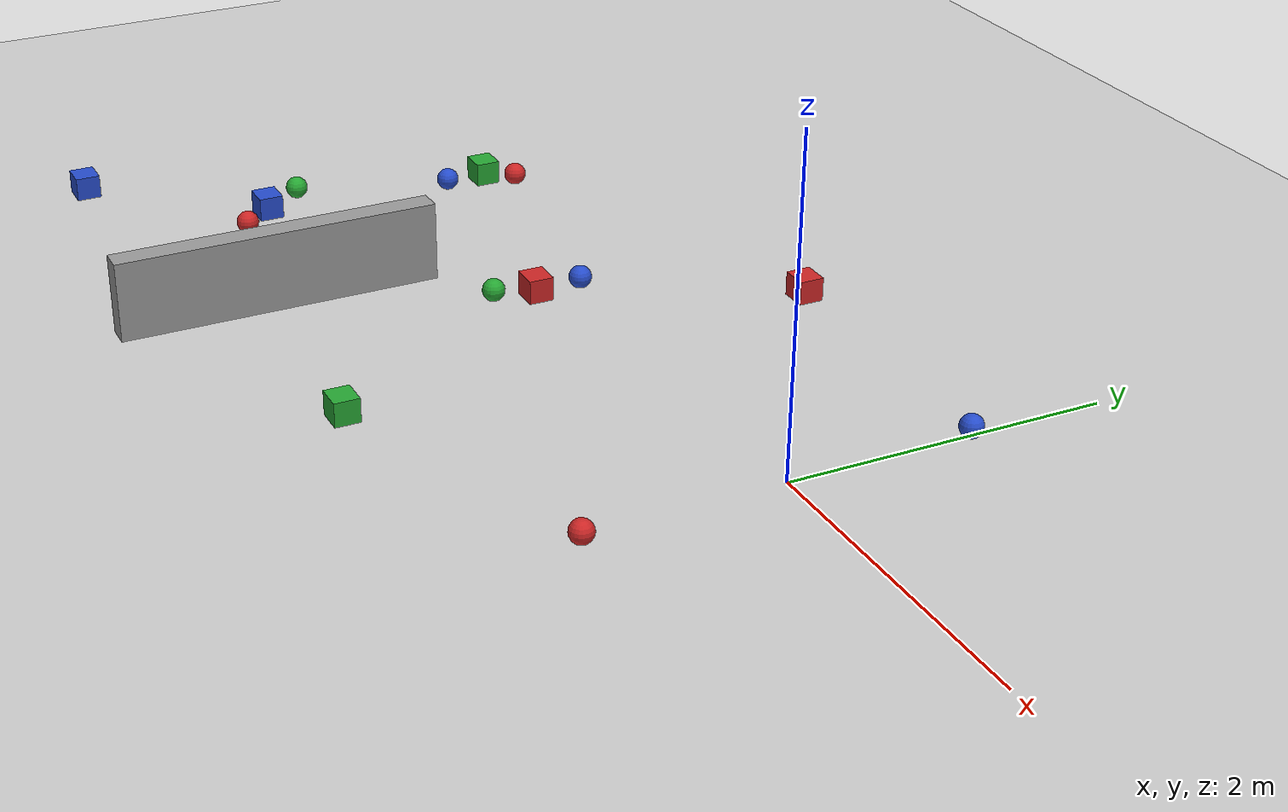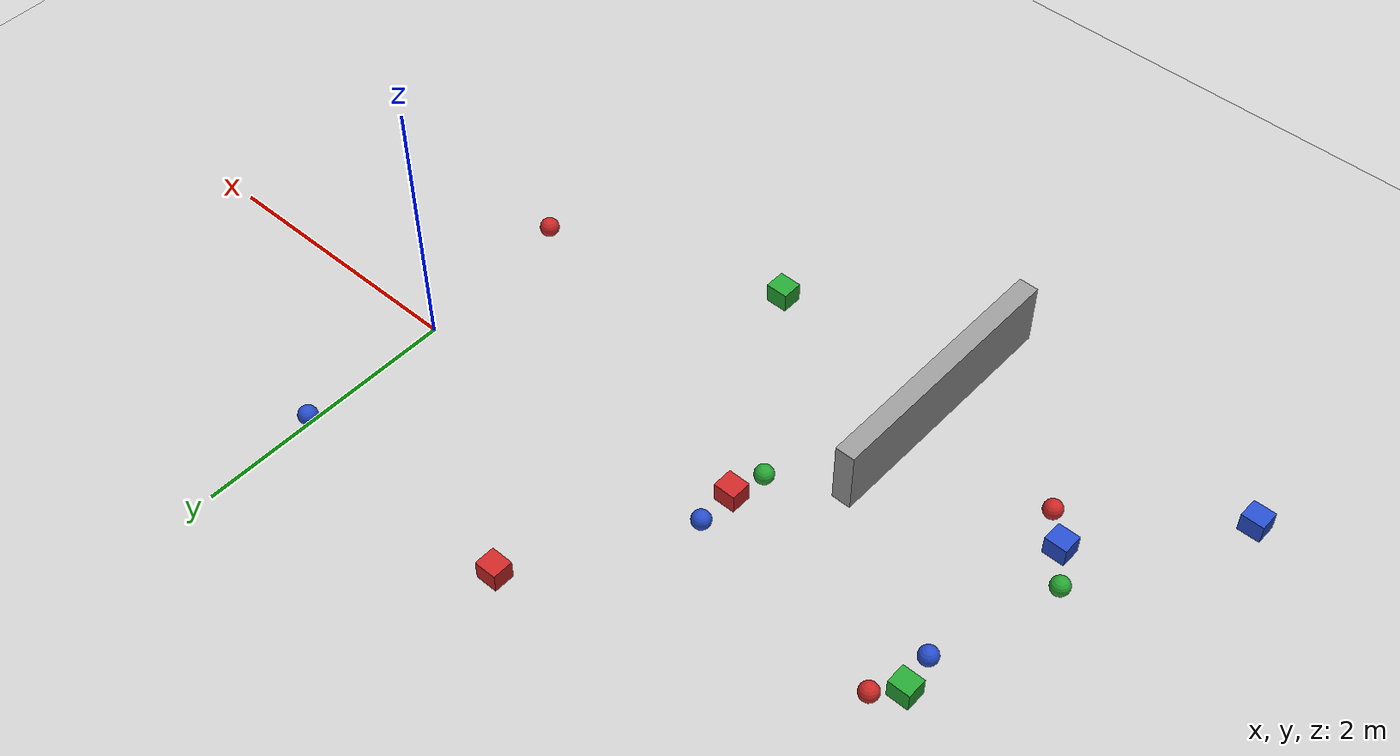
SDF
<sdf version="1.7">
 <world name="default">
  <light name="sun" type="directional">
   <cast_shadows>0</cast_shadows>
   <pose>0 0 10 0 -0 0</pose>
   <diffuse>0.8 0.8 0.8 1</diffuse>
   <specular>0.2 0.2 0.2 1</specular>
   <attenuation>
    <range>1000</range>
    <constant>0.9</constant>
    <linear>0.01</linear>
    <quadratic>0.001</quadratic>
   </attenuation>
   <direction>-0.5 0.1 -0.9</direction>
   <spot><inner_angle>0</inner_angle><outer_angle>0</outer_angle><falloff>0</falloff></spot>
  </light>
  <model name="ground_plane">
   <static>1</static>
   <link name="link">
    <collision name="collision">
     <geometry><plane><normal>0 0 1</normal><size>100 100</size></plane></geometry>
     <surface><friction><ode><mu>100</mu><mu2>50</mu2></ode></friction></surface>
    </collision>
    <visual name="visual">
     <cast_shadows>0</cast_shadows>
     <geometry><plane><normal>0 0 1</normal><size>100 100</size></plane></geometry>
     <material>
      <script><uri>file://media/materials/scripts/gazebo.material</uri><name>Gazebo/Grey</name></script>
     </material>
    </visual>
   </link>
  </model>
  <gravity>0 0 -9.8</gravity>
  <scene><ambient>0.4 0.4 0.4 1</ambient><background>0.7 0.7 0.7 1</background><shadows>1</shadows></scene>
  <magnetic_field>6e-06 2.3e-05 -4.2e-05</magnetic_field>
  <atmosphere type="adiabatic"/>
  <physics type="ode">
   <max_step_size>0.001</max_step_size>
   <real_time_factor>1</real_time_factor>
   <real_time_update_rate>1000</real_time_update_rate>
  </physics>
  <audio><device>default</device></audio>
  <spherical_coordinates>
   <surface_model>EARTH_WGS84</surface_model>
   <latitude_deg>0</latitude_deg>
   <longitude_deg>0</longitude_deg>
   <elevation>0</elevation>
   <heading_deg>0</heading_deg>
  </spherical_coordinates>
  <model name="unit_sphere_1">
   <link name="link">
    <inertial>
     <mass>1</mass>
     <inertia><ixx>0.1</ixx><ixy>0</ixy><ixz>0</ixz><iyy>0.1</iyy><iyz>0</iyz><izz>0.1</izz></inertia>
    </inertial>
    <visual name="visual">
     <geometry><sphere><radius>0.0712854</radius></sphere></geometry>
     <material>
      <script><name>Gazebo/Green</name><uri>file://media/materials/scripts/gazebo.material</uri></script>
      <shader type="pixel"><normal_map>__default__</normal_map></shader>
      <ambient>0 1 0 1</ambient>
      <diffuse>0 1 0 1</diffuse>
      <specular>0.1 0.1 0.1 1</specular>
      <emissive>0 0 0 1</emissive>
     </material>
    </visual>
    <collision name="collision">
     <geometry><sphere><radius>0.071285</radius></sphere></geometry>
     <surface>
      <friction>
       <ode><mu>1</mu><mu2>1</mu2><fdir1>0 0 0</fdir1><slip1>0</slip1><slip2>0</slip2></ode>
       <torsional>
        <coefficient>1</coefficient>
        <patch_radius>0</patch_radius>
        <surface_radius>0</surface_radius>
        <use_patch_radius>1</use_patch_radius>
        <ode><slip>0</slip></ode>
       </torsional>
      </friction>
      <bounce><restitution_coefficient>0</restitution_coefficient><threshold>1e+06</threshold></bounce>
      <contact>
       <collide_without_contact>0</collide_without_contact>
       <collide_without_contact_bitmask>1</collide_without_contact_bitmask>
       <collide_bitmask>1</collide_bitmask>
       <ode>
        <soft_cfm>0</soft_cfm>
        <soft_erp>0.2</soft_erp>
        <kp>1e+13</kp>
        <kd>1</kd>
        <max_vel>0.01</max_vel>
        <min_depth>0</min_depth>
       </ode>
       <bullet>
        <split_impulse>1</split_impulse>
        <split_impulse_penetration_threshold>-0.01</split_impulse_penetration_threshold>
        <soft_cfm>0</soft_cfm>
        <soft_erp>0.2</soft_erp>
        <kp>1e+13</kp>
        <kd>1</kd>
       </bullet>
      </contact>
     </surface>
    </collision>
   </link>
   <static>0</static>
   <pose>-4.5907 -1.09166 0.071285 0 -0 0</pose>
  </model>
  <model name="unit_sphere_clone_1">
   <link name="link">
    <inertial>
     <mass>1</mass>
     <inertia><ixx>0.1</ixx><ixy>0</ixy><ixz>0</ixz><iyy>0.1</iyy><iyz>0</iyz><izz>0.1</izz></inertia>
    </inertial>
    <visual name="visual">
     <geometry><sphere><radius>0.0712854</radius></sphere></geometry>
     <material>
      <script><name>Gazebo/Red</name><uri>file://media/materials/scripts/gazebo.material</uri></script>
      <shader type="pixel"><normal_map>__default__</normal_map></shader>
      <ambient>1 0 0 1</ambient>
      <diffuse>1 0 0 1</diffuse>
      <specular>0.1 0.1 0.1 1</specular>
      <emissive>0 0 0 1</emissive>
     </material>
    </visual>
    <collision name="collision">
     <geometry><sphere><radius>0.071285</radius></sphere></geometry>
     <surface>
      <friction>
       <ode><mu>1</mu><mu2>1</mu2><fdir1>0 0 0</fdir1><slip1>0</slip1><slip2>0</slip2></ode>
       <torsional>
        <coefficient>1</coefficient>
        <patch_radius>0</patch_radius>
        <surface_radius>0</surface_radius>
        <use_patch_radius>1</use_patch_radius>
        <ode><slip>0</slip></ode>
       </torsional>
      </friction>
      <bounce><restitution_coefficient>0</restitution_coefficient><threshold>1e+06</threshold></bounce>
      <contact>
       <collide_without_contact>0</collide_without_contact>
       <collide_without_contact_bitmask>1</collide_without_contact_bitmask>
       <collide_bitmask>1</collide_bitmask>
       <ode>
        <soft_cfm>0</soft_cfm>
        <soft_erp>0.2</soft_erp>
        <kp>1e+13</kp>
        <kd>1</kd>
        <max_vel>0.01</max_vel>
        <min_depth>0</min_depth>
       </ode>
       <bullet>
        <split_impulse>1</split_impulse>
        <split_impulse_penetration_threshold>-0.01</split_impulse_penetration_threshold>
        <soft_cfm>0</soft_cfm>
        <soft_erp>0.2</soft_erp>
        <kp>1e+13</kp>
        <kd>1</kd>
       </bullet>
      </contact>
     </surface>
    </collision>
   </link>
   <static>0</static>
   <pose>-4.17675 0.318428 0.071285 0 -0 0</pose>
  </model>
  <model name="unit_sphere2">
   <link name="link">
    <inertial>
     <mass>1</mass>
     <inertia><ixx>0.1</ixx><ixy>0</ixy><ixz>0</ixz><iyy>0.1</iyy><iyz>0</iyz><izz>0.1</izz></inertia>
    </inertial>
    <visual name="visual">
     <geometry><sphere><radius>0.0712854</radius></sphere></geometry>
     <material>
      <script><name>Gazebo/Blue</name><uri>file://media/materials/scripts/gazebo.material</uri></script>
      <shader type="pixel"><normal_map>__default__</normal_map></shader>
      <ambient>0 0 1 1</ambient>
      <diffuse>0 0 1 1</diffuse>
      <specular>0.1 0.1 0.1 1</specular>
      <emissive>0 0 0 1</emissive>
     </material>
    </visual>
    <collision name="collision">
     <geometry><sphere><radius>0.071285</radius></sphere></geometry>
     <surface>
      <friction>
       <ode><mu>1</mu><mu2>1</mu2><fdir1>0 0 0</fdir1><slip1>0</slip1><slip2>0</slip2></ode>
       <torsional>
        <coefficient>1</coefficient>
        <patch_radius>0</patch_radius>
        <surface_radius>0</surface_radius>
        <use_patch_radius>1</use_patch_radius>
        <ode><slip>0</slip></ode>
       </torsional>
      </friction>
      <bounce><restitution_coefficient>0</restitution_coefficient><threshold>1e+06</threshold></bounce>
      <contact>
       <collide_without_contact>0</collide_without_contact>
       <collide_without_contact_bitmask>1</collide_without_contact_bitmask>
       <collide_bitmask>1</collide_bitmask>
       <ode>
        <soft_cfm>0</soft_cfm>
        <soft_erp>0.2</soft_erp>
        <kp>1e+13</kp>
        <kd>1</kd>
        <max_vel>0.01</max_vel>
        <min_depth>0</min_depth>
       </ode>
       <bullet>
        <split_impulse>1</split_impulse>
        <split_impulse_penetration_threshold>-0.01</split_impulse_penetration_threshold>
        <soft_cfm>0</soft_cfm>
        <soft_erp>0.2</soft_erp>
        <kp>1e+13</kp>
        <kd>1</kd>
       </bullet>
      </contact>
     </surface>
    </collision>
   </link>
   <static>0</static>
   <pose>-4.28804 -0.126573 0.071285 0 -0 0</pose>
  </model>
  <model name="unit_box1">
   <link name="link">
    <inertial>
     <mass>1</mass>
     <inertia>
      <ixx>0.166667</ixx>
      <ixy>0</ixy>
      <ixz>0</ixz>
      <iyy>0.166667</iyy>
      <iyz>0</iyz>
      <izz>0.166667</izz>
     </inertia>
    </inertial>
    <visual name="visual">
     <geometry><box><size>0.170646 0.156593 0.151555</size></box></geometry>
     <material>
      <script><name>Gazebo/Green</name><uri>file://media/materials/scripts/gazebo.material</uri></script>
      <shader type="pixel"><normal_map>__default__</normal_map></shader>
      <ambient>0 1 0 1</ambient>
      <diffuse>0 1 0 1</diffuse>
      <specular>0.1 0.1 0.1 1</specular>
      <emissive>0 0 0 1</emissive>
     </material>
    </visual>
    <collision name="collision">
     <geometry><box><size>0.170646 0.156593 0.151555</size></box></geometry>
     <surface>
      <friction>
       <ode><mu>1</mu><mu2>1</mu2><fdir1>0 0 0</fdir1><slip1>0</slip1><slip2>0</slip2></ode>
       <torsional>
        <coefficient>1</coefficient>
        <patch_radius>0</patch_radius>
        <surface_radius>0</surface_radius>
        <use_patch_radius>1</use_patch_radius>
        <ode><slip>0</slip></ode>
       </torsional>
      </friction>
      <bounce><restitution_coefficient>0</restitution_coefficient><threshold>1e+06</threshold></bounce>
      <contact>
       <collide_without_contact>0</collide_without_contact>
       <collide_without_contact_bitmask>1</collide_without_contact_bitmask>
       <collide_bitmask>1</collide_bitmask>
       <ode>
        <soft_cfm>0</soft_cfm>
        <soft_erp>0.2</soft_erp>
        <kp>1e+13</kp>
        <kd>1</kd>
        <max_vel>0.01</max_vel>
        <min_depth>0</min_depth>
       </ode>
       <bullet>
        <split_impulse>1</split_impulse>
        <split_impulse_penetration_threshold>-0.01</split_impulse_penetration_threshold>
        <soft_cfm>0</soft_cfm>
        <soft_erp>0.2</soft_erp>
        <kp>1e+13</kp>
        <kd>1</kd>
       </bullet>
      </contact>
     </surface>
    </collision>
   </link>
   <static>0</static>
   <pose>-4.32461 0.149663 0.075778 4e-06 -1e-06 1e-05</pose>
  </model>
  <model name="unit_box_clone2">
   <link name="link">
    <inertial>
     <mass>1</mass>
     <inertia>
      <ixx>0.166667</ixx>
      <ixy>0</ixy>
      <ixz>0</ixz>
      <iyy>0.166667</iyy>
      <iyz>0</iyz>
      <izz>0.166667</izz>
     </inertia>
    </inertial>
    <visual name="visual">
     <geometry><box><size>0.170646 0.156593 0.151555</size></box></geometry>
     <material>
      <script><name>Gazebo/Red</name><uri>file://media/materials/scripts/gazebo.material</uri></script>
      <shader type="pixel"><normal_map>__default__</normal_map></shader>
      <ambient>1 0 0 1</ambient>
      <diffuse>1 0 0 1</diffuse>
      <specular>0.1 0.1 0.1 1</specular>
      <emissive>0 0 0 1</emissive>
     </material>
    </visual>
    <collision name="collision">
     <geometry><box><size>0.170646 0.156593 0.151555</size></box></geometry>
     <surface>
      <friction>
       <ode><mu>1</mu><mu2>1</mu2><fdir1>0 0 0</fdir1><slip1>0</slip1><slip2>0</slip2></ode>
       <torsional>
        <coefficient>1</coefficient>
        <patch_radius>0</patch_radius>
        <surface_radius>0</surface_radius>
        <use_patch_radius>1</use_patch_radius>
        <ode><slip>0</slip></ode>
       </torsional>
      </friction>
      <bounce><restitution_coefficient>0</restitution_coefficient><threshold>1e+06</threshold></bounce>
      <contact>
       <collide_without_contact>0</collide_without_contact>
       <collide_without_contact_bitmask>1</collide_without_contact_bitmask>
       <collide_bitmask>1</collide_bitmask>
       <ode>
        <soft_cfm>0</soft_cfm>
        <soft_erp>0.2</soft_erp>
        <kp>1e+13</kp>
        <kd>1</kd>
        <max_vel>0.01</max_vel>
        <min_depth>0</min_depth>
       </ode>
       <bullet>
        <split_impulse>1</split_impulse>
        <split_impulse_penetration_threshold>-0.01</split_impulse_penetration_threshold>
        <soft_cfm>0</soft_cfm>
        <soft_erp>0.2</soft_erp>
        <kp>1e+13</kp>
        <kd>1</kd>
       </bullet>
      </contact>
     </surface>
    </collision>
   </link>
   <static>0</static>
   <pose>-1.84271 1.19898 0.075778 1e-06 2e-06 0</pose>
  </model>
  <model name="unit_box_clone_3">
   <link name="link">
    <inertial>
     <mass>1</mass>
     <inertia>
      <ixx>0.166667</ixx>
      <ixy>0</ixy>
      <ixz>0</ixz>
      <iyy>0.166667</iyy>
      <iyz>0</iyz>
      <izz>0.166667</izz>
     </inertia>
    </inertial>
    <visual name="visual">
     <geometry><box><size>0.170646 0.156593 0.151555</size></box></geometry>
     <material>
      <script><name>Gazebo/Blue</name><uri>file://media/materials/scripts/gazebo.material</uri></script>
      <shader type="pixel"><normal_map>__default__</normal_map></shader>
      <ambient>0 0 1 1</ambient>
      <diffuse>0 0 1 1</diffuse>
      <specular>0.1 0.1 0.1 1</specular>
      <emissive>0 0 0 1</emissive>
     </material>
    </visual>
    <collision name="collision">
     <geometry><box><size>0.170646 0.156593 0.151555</size></box></geometry>
     <surface>
      <friction>
       <ode><mu>1</mu><mu2>1</mu2><fdir1>0 0 0</fdir1><slip1>0</slip1><slip2>0</slip2></ode>
       <torsional>
        <coefficient>1</coefficient>
        <patch_radius>0</patch_radius>
        <surface_radius>0</surface_radius>
        <use_patch_radius>1</use_patch_radius>
        <ode><slip>0</slip></ode>
       </torsional>
      </friction>
      <bounce><restitution_coefficient>0</restitution_coefficient><threshold>1e+06</threshold></bounce>
      <contact>
       <collide_without_contact>0</collide_without_contact>
       <collide_without_contact_bitmask>1</collide_without_contact_bitmask>
       <collide_bitmask>1</collide_bitmask>
       <ode>
        <soft_cfm>0</soft_cfm>
        <soft_erp>0.2</soft_erp>
        <kp>1e+13</kp>
        <kd>1</kd>
        <max_vel>0.01</max_vel>
        <min_depth>0</min_depth>
       </ode>
       <bullet>
        <split_impulse>1</split_impulse>
        <split_impulse_penetration_threshold>-0.01</split_impulse_penetration_threshold>
        <soft_cfm>0</soft_cfm>
        <soft_erp>0.2</soft_erp>
        <kp>1e+13</kp>
        <kd>1</kd>
       </bullet>
      </contact>
     </surface>
    </collision>
   </link>
   <static>0</static>
   <pose>-4.40909 -1.35678 0.075778 -1e-06 3e-06 -1.2e-05</pose>
  </model>
  <model name="unit_box1_clone">
   <link name="link">
    <inertial>
     <mass>1</mass>
     <inertia>
      <ixx>0.166667</ixx>
      <ixy>0</ixy>
      <ixz>0</ixz>
      <iyy>0.166667</iyy>
      <iyz>0</iyz>
      <izz>0.166667</izz>
     </inertia>
    </inertial>
    <visual name="visual">
     <geometry><box><size>0.170646 0.156593 0.151555</size></box></geometry>
     <material>
      <script><name>Gazebo/Green</name><uri>file://media/materials/scripts/gazebo.material</uri></script>
      <shader type="pixel"><normal_map>__default__</normal_map></shader>
      <ambient>0 1 0 1</ambient>
      <diffuse>0 1 0 1</diffuse>
      <specular>0.1 0.1 0.1 1</specular>
      <emissive>0 0 0 1</emissive>
     </material>
    </visual>
    <collision name="collision">
     <geometry><box><size>0.170646 0.156593 0.151555</size></box></geometry>
     <surface>
      <friction>
       <ode><mu>1</mu><mu2>1</mu2><fdir1>0 0 0</fdir1><slip1>0</slip1><slip2>0</slip2></ode>
       <torsional>
        <coefficient>1</coefficient>
        <patch_radius>0</patch_radius>
        <surface_radius>0</surface_radius>
        <use_patch_radius>1</use_patch_radius>
        <ode><slip>0</slip></ode>
       </torsional>
      </friction>
      <bounce><restitution_coefficient>0</restitution_coefficient><threshold>1e+06</threshold></bounce>
      <contact>
       <collide_without_contact>0</collide_without_contact>
       <collide_without_contact_bitmask>1</collide_without_contact_bitmask>
       <collide_bitmask>1</collide_bitmask>
       <ode>
        <soft_cfm>0</soft_cfm>
        <soft_erp>0.2</soft_erp>
        <kp>1e+13</kp>
        <kd>1</kd>
        <max_vel>0.01</max_vel>
        <min_depth>0</min_depth>
       </ode>
       <bullet>
        <split_impulse>1</split_impulse>
        <split_impulse_penetration_threshold>-0.01</split_impulse_penetration_threshold>
        <soft_cfm>0</soft_cfm>
        <soft_erp>0.2</soft_erp>
        <kp>1e+13</kp>
        <kd>1</kd>
       </bullet>
      </contact>
     </surface>
    </collision>
   </link>
   <static>0</static>
   <pose>-1.64575 -1.86609 0.075777 -2e-06 -4e-06 1.6e-05</pose>
  </model>
  <model name="unit_sphere2_clone">
   <link name="link">
    <inertial>
     <mass>1</mass>
     <inertia><ixx>0.1</ixx><ixy>0</ixy><ixz>0</ixz><iyy>0.1</iyy><iyz>0</iyz><izz>0.1</izz></inertia>
    </inertial>
    <visual name="visual">
     <geometry><sphere><radius>0.0712854</radius></sphere></geometry>
     <material>
      <script><name>Gazebo/Blue</name><uri>file://media/materials/scripts/gazebo.material</uri></script>
      <shader type="pixel"><normal_map>__default__</normal_map></shader>
      <ambient>0 0 1 1</ambient>
      <diffuse>0 0 1 1</diffuse>
      <specular>0.1 0.1 0.1 1</specular>
      <emissive>0 0 0 1</emissive>
     </material>
    </visual>
    <collision name="collision">
     <geometry><sphere><radius>0.071285</radius></sphere></geometry>
     <surface>
      <friction>
       <ode><mu>1</mu><mu2>1</mu2><fdir1>0 0 0</fdir1><slip1>0</slip1><slip2>0</slip2></ode>
       <torsional>
        <coefficient>1</coefficient>
        <patch_radius>0</patch_radius>
        <surface_radius>0</surface_radius>
        <use_patch_radius>1</use_patch_radius>
        <ode><slip>0</slip></ode>
       </torsional>
      </friction>
      <bounce><restitution_coefficient>0</restitution_coefficient><threshold>1e+06</threshold></bounce>
      <contact>
       <collide_without_contact>0</collide_without_contact>
       <collide_without_contact_bitmask>1</collide_without_contact_bitmask>
       <collide_bitmask>1</collide_bitmask>
       <ode>
        <soft_cfm>0</soft_cfm>
        <soft_erp>0.2</soft_erp>
        <kp>1e+13</kp>
        <kd>1</kd>
        <max_vel>0.01</max_vel>
        <min_depth>0</min_depth>
       </ode>
       <bullet>
        <split_impulse>1</split_impulse>
        <split_impulse_penetration_threshold>-0.01</split_impulse_penetration_threshold>
        <soft_cfm>0</soft_cfm>
        <soft_erp>0.2</soft_erp>
        <kp>1e+13</kp>
        <kd>1</kd>
       </bullet>
      </contact>
     </surface>
    </collision>
   </link>
   <static>0</static>
   <pose>0.017272 1.14167 0.071285 0 -0 0</pose>
  </model>
  <model name="unit_sphere_clone_1_clone">
   <link name="link">
    <inertial>
     <mass>1</mass>
     <inertia><ixx>0.1</ixx><ixy>0</ixy><ixz>0</ixz><iyy>0.1</iyy><iyz>0</iyz><izz>0.1</izz></inertia>
    </inertial>
    <visual name="visual">
     <geometry><sphere><radius>0.0712854</radius></sphere></geometry>
     <material>
      <script><name>Gazebo/Red</name><uri>file://media/materials/scripts/gazebo.material</uri></script>
      <shader type="pixel"><normal_map>__default__</normal_map></shader>
      <ambient>1 0 0 1</ambient>
      <diffuse>1 0 0 1</diffuse>
      <specular>0.1 0.1 0.1 1</specular>
      <emissive>0 0 0 1</emissive>
     </material>
    </visual>
    <collision name="collision">
     <geometry><sphere><radius>0.071285</radius></sphere></geometry>
     <surface>
      <friction>
       <ode><mu>1</mu><mu2>1</mu2><fdir1>0 0 0</fdir1><slip1>0</slip1><slip2>0</slip2></ode>
       <torsional>
        <coefficient>1</coefficient>
        <patch_radius>0</patch_radius>
        <surface_radius>0</surface_radius>
        <use_patch_radius>1</use_patch_radius>
        <ode><slip>0</slip></ode>
       </torsional>
      </friction>
      <bounce><restitution_coefficient>0</restitution_coefficient><threshold>1e+06</threshold></bounce>
      <contact>
       <collide_without_contact>0</collide_without_contact>
       <collide_without_contact_bitmask>1</collide_without_contact_bitmask>
       <collide_bitmask>1</collide_bitmask>
       <ode>
        <soft_cfm>0</soft_cfm>
        <soft_erp>0.2</soft_erp>
        <kp>1e+13</kp>
        <kd>1</kd>
        <max_vel>0.01</max_vel>
        <min_depth>0</min_depth>
       </ode>
       <bullet>
        <split_impulse>1</split_impulse>
        <split_impulse_penetration_threshold>-0.01</split_impulse_penetration_threshold>
        <soft_cfm>0</soft_cfm>
        <soft_erp>0.2</soft_erp>
        <kp>1e+13</kp>
        <kd>1</kd>
       </bullet>
      </contact>
     </surface>
    </collision>
   </link>
   <static>0</static>
   <pose>0.063125 -1.22841 0.071285 0 -0 0</pose>
  </model>
  <model name="unit_sphere_clone_1_clone_0">
   <link name="link">
    <inertial>
     <mass>1</mass>
     <inertia><ixx>0.1</ixx><ixy>0</ixy><ixz>0</ixz><iyy>0.1</iyy><iyz>0</iyz><izz>0.1</izz></inertia>
    </inertial>
    <visual name="visual">
     <geometry><sphere><radius>0.0712854</radius></sphere></geometry>
     <material>
      <script><name>Gazebo/Red</name><uri>file://media/materials/scripts/gazebo.material</uri></script>
      <shader type="pixel"><normal_map>__default__</normal_map></shader>
      <ambient>1 0 0 1</ambient>
      <diffuse>1 0 0 1</diffuse>
      <specular>0.1 0.1 0.1 1</specular>
      <emissive>0 0 0 1</emissive>
     </material>
    </visual>
    <collision name="collision">
     <geometry><sphere><radius>0.071285</radius></sphere></geometry>
     <surface>
      <friction>
       <ode><mu>1</mu><mu2>1</mu2><fdir1>0 0 0</fdir1><slip1>0</slip1><slip2>0</slip2></ode>
       <torsional>
        <coefficient>1</coefficient>
        <patch_radius>0</patch_radius>
        <surface_radius>0</surface_radius>
        <use_patch_radius>1</use_patch_radius>
        <ode><slip>0</slip></ode>
       </torsional>
      </friction>
      <bounce><restitution_coefficient>0</restitution_coefficient><threshold>1e+06</threshold></bounce>
      <contact>
       <collide_without_contact>0</collide_without_contact>
       <collide_without_contact_bitmask>1</collide_without_contact_bitmask>
       <collide_bitmask>1</collide_bitmask>
       <ode>
        <soft_cfm>0</soft_cfm>
        <soft_erp>0.2</soft_erp>
        <kp>1e+13</kp>
        <kd>1</kd>
        <max_vel>0.01</max_vel>
        <min_depth>0</min_depth>
       </ode>
       <bullet>
        <split_impulse>1</split_impulse>
        <split_impulse_penetration_threshold>-0.01</split_impulse_penetration_threshold>
        <soft_cfm>0</soft_cfm>
        <soft_erp>0.2</soft_erp>
        <kp>1e+13</kp>
        <kd>1</kd>
       </bullet>
      </contact>
     </surface>
    </collision>
   </link>
   <static>0</static>
   <pose>-4.2041 -1.56054 0.071285 0 -0 0</pose>
  </model>
  <model name="unit_box_clone2_clone">
   <link name="link">
    <inertial>
     <mass>1</mass>
     <inertia>
      <ixx>0.166667</ixx>
      <ixy>0</ixy>
      <ixz>0</ixz>
      <iyy>0.166667</iyy>
      <iyz>0</iyz>
      <izz>0.166667</izz>
     </inertia>
    </inertial>
    <visual name="visual">
     <geometry><box><size>0.170646 0.156593 0.151555</size></box></geometry>
     <material>
      <script><name>Gazebo/Red</name><uri>file://media/materials/scripts/gazebo.material</uri></script>
      <shader type="pixel"><normal_map>__default__</normal_map></shader>
      <ambient>1 0 0 1</ambient>
      <diffuse>1 0 0 1</diffuse>
      <specular>0.1 0.1 0.1 1</specular>
      <emissive>0 0 0 1</emissive>
     </material>
    </visual>
    <collision name="collision">
     <geometry><box><size>0.170646 0.156593 0.151555</size></box></geometry>
     <surface>
      <friction>
       <ode><mu>1</mu><mu2>1</mu2><fdir1>0 0 0</fdir1><slip1>0</slip1><slip2>0</slip2></ode>
       <torsional>
        <coefficient>1</coefficient>
        <patch_radius>0</patch_radius>
        <surface_radius>0</surface_radius>
        <use_patch_radius>1</use_patch_radius>
        <ode><slip>0</slip></ode>
       </torsional>
      </friction>
      <bounce><restitution_coefficient>0</restitution_coefficient><threshold>1e+06</threshold></bounce>
      <contact>
       <collide_without_contact>0</collide_without_contact>
       <collide_without_contact_bitmask>1</collide_without_contact_bitmask>
       <collide_bitmask>1</collide_bitmask>
       <ode>
        <soft_cfm>0</soft_cfm>
        <soft_erp>0.2</soft_erp>
        <kp>1e+13</kp>
        <kd>1</kd>
        <max_vel>0.01</max_vel>
        <min_depth>0</min_depth>
       </ode>
       <bullet>
        <split_impulse>1</split_impulse>
        <split_impulse_penetration_threshold>-0.01</split_impulse_penetration_threshold>
        <soft_cfm>0</soft_cfm>
        <soft_erp>0.2</soft_erp>
        <kp>1e+13</kp>
        <kd>1</kd>
       </bullet>
      </contact>
     </surface>
    </collision>
   </link>
   <static>0</static>
   <pose>-2.55221 -0.274008 0.075777 3e-06 3e-06 1.2e-05</pose>
  </model>
  <model name="unit_sphere_1_clone">
   <link name="link">
    <inertial>
     <mass>1</mass>
     <inertia><ixx>0.1</ixx><ixy>0</ixy><ixz>0</ixz><iyy>0.1</iyy><iyz>0</iyz><izz>0.1</izz></inertia>
    </inertial>
    <visual name="visual">
     <geometry><sphere><radius>0.0712854</radius></sphere></geometry>
     <material>
      <script><name>Gazebo/Green</name><uri>file://media/materials/scripts/gazebo.material</uri></script>
      <shader type="pixel"><normal_map>__default__</normal_map></shader>
      <ambient>0 1 0 1</ambient>
      <diffuse>0 1 0 1</diffuse>
      <specular>0.1 0.1 0.1 1</specular>
      <emissive>0 0 0 1</emissive>
     </material>
    </visual>
    <collision name="collision">
     <geometry><sphere><radius>0.071285</radius></sphere></geometry>
     <surface>
      <friction>
       <ode><mu>1</mu><mu2>1</mu2><fdir1>0 0 0</fdir1><slip1>0</slip1><slip2>0</slip2></ode>
       <torsional>
        <coefficient>1</coefficient>
        <patch_radius>0</patch_radius>
        <surface_radius>0</surface_radius>
        <use_patch_radius>1</use_patch_radius>
        <ode><slip>0</slip></ode>
       </torsional>
      </friction>
      <bounce><restitution_coefficient>0</restitution_coefficient><threshold>1e+06</threshold></bounce>
      <contact>
       <collide_without_contact>0</collide_without_contact>
       <collide_without_contact_bitmask>1</collide_without_contact_bitmask>
       <collide_bitmask>1</collide_bitmask>
       <ode>
        <soft_cfm>0</soft_cfm>
        <soft_erp>0.2</soft_erp>
        <kp>1e+13</kp>
        <kd>1</kd>
        <max_vel>0.01</max_vel>
        <min_depth>0</min_depth>
       </ode>
       <bullet>
        <split_impulse>1</split_impulse>
        <split_impulse_penetration_threshold>-0.01</split_impulse_penetration_threshold>
        <soft_cfm>0</soft_cfm>
        <soft_erp>0.2</soft_erp>
        <kp>1e+13</kp>
        <kd>1</kd>
       </bullet>
      </contact>
     </surface>
    </collision>
   </link>
   <static>0</static>
   <pose>-2.61648 -0.527059 0.071285 0 -0 0</pose>
  </model>
  <model name="unit_sphere2_clone_0">
   <link name="link">
    <inertial>
     <mass>1</mass>
     <inertia><ixx>0.1</ixx><ixy>0</ixy><ixz>0</ixz><iyy>0.1</iyy><iyz>0</iyz><izz>0.1</izz></inertia>
    </inertial>
    <visual name="visual">
     <geometry><sphere><radius>0.0712854</radius></sphere></geometry>
     <material>
      <script><name>Gazebo/Blue</name><uri>file://media/materials/scripts/gazebo.material</uri></script>
      <shader type="pixel"><normal_map>__default__</normal_map></shader>
      <ambient>0 0 1 1</ambient>
      <diffuse>0 0 1 1</diffuse>
      <specular>0.1 0.1 0.1 1</specular>
      <emissive>0 0 0 1</emissive>
     </material>
    </visual>
    <collision name="collision">
     <geometry><sphere><radius>0.071285</radius></sphere></geometry>
     <surface>
      <friction>
       <ode><mu>1</mu><mu2>1</mu2><fdir1>0 0 0</fdir1><slip1>0</slip1><slip2>0</slip2></ode>
       <torsional>
        <coefficient>1</coefficient>
        <patch_radius>0</patch_radius>
        <surface_radius>0</surface_radius>
        <use_patch_radius>1</use_patch_radius>
        <ode><slip>0</slip></ode>
       </torsional>
      </friction>
      <bounce><restitution_coefficient>0</restitution_coefficient><threshold>1e+06</threshold></bounce>
      <contact>
       <collide_without_contact>0</collide_without_contact>
       <collide_without_contact_bitmask>1</collide_without_contact_bitmask>
       <collide_bitmask>1</collide_bitmask>
       <ode>
        <soft_cfm>0</soft_cfm>
        <soft_erp>0.2</soft_erp>
        <kp>1e+13</kp>
        <kd>1</kd>
        <max_vel>0.01</max_vel>
        <min_depth>0</min_depth>
       </ode>
       <bullet>
        <split_impulse>1</split_impulse>
        <split_impulse_penetration_threshold>-0.01</split_impulse_penetration_threshold>
        <soft_cfm>0</soft_cfm>
        <soft_erp>0.2</soft_erp>
        <kp>1e+13</kp>
        <kd>1</kd>
       </bullet>
      </contact>
     </surface>
    </collision>
   </link>
   <static>0</static>
   <pose>-2.55539 0.027059 0.071285 0 -0 0</pose>
  </model>
  <model name="unit_box_clone_3_clone_0">
   <link name="link">
    <inertial>
     <mass>1</mass>
     <inertia>
      <ixx>0.166667</ixx>
      <ixy>0</ixy>
      <ixz>0</ixz>
      <iyy>0.166667</iyy>
      <iyz>0</iyz>
      <izz>0.166667</izz>
     </inertia>
    </inertial>
    <visual name="visual">
     <geometry><box><size>0.170646 0.156593 0.151555</size></box></geometry>
     <material>
      <script><name>Gazebo/Blue</name><uri>file://media/materials/scripts/gazebo.material</uri></script>
      <shader type="pixel"><normal_map>__default__</normal_map></shader>
      <ambient>0 0 1 1</ambient>
      <diffuse>0 0 1 1</diffuse>
      <specular>0.1 0.1 0.1 1</specular>
      <emissive>0 0 0 1</emissive>
     </material>
    </visual>
    <collision name="collision">
     <geometry><box><size>0.170646 0.156593 0.151555</size></box></geometry>
     <surface>
      <friction>
       <ode><mu>1</mu><mu2>1</mu2><fdir1>0 0 0</fdir1><slip1>0</slip1><slip2>0</slip2></ode>
       <torsional>
        <coefficient>1</coefficient>
        <patch_radius>0</patch_radius>
        <surface_radius>0</surface_radius>
        <use_patch_radius>1</use_patch_radius>
        <ode><slip>0</slip></ode>
       </torsional>
      </friction>
      <bounce><restitution_coefficient>0</restitution_coefficient><threshold>1e+06</threshold></bounce>
      <contact>
       <collide_without_contact>0</collide_without_contact>
       <collide_without_contact_bitmask>1</collide_without_contact_bitmask>
       <collide_bitmask>1</collide_bitmask>
       <ode>
        <soft_cfm>0</soft_cfm>
        <soft_erp>0.2</soft_erp>
        <kp>1e+13</kp>
        <kd>1</kd>
        <max_vel>0.01</max_vel>
        <min_depth>0</min_depth>
       </ode>
       <bullet>
        <split_impulse>1</split_impulse>
        <split_impulse_penetration_threshold>-0.01</split_impulse_penetration_threshold>
        <soft_cfm>0</soft_cfm>
        <soft_erp>0.2</soft_erp>
        <kp>1e+13</kp>
        <kd>1</kd>
       </bullet>
      </contact>
     </surface>
    </collision>
   </link>
   <static>0</static>
   <pose>-5.24543 -2.3525 0.075777 1e-06 4e-06 -1.6e-05</pose>
  </model>
  <model name="wall_">
   <pose>-1.62628 -1.33789 0.009331 0 -0 0</pose>
   <link name="Wall_0">
    <collision name="Wall_0_Collision">
     <geometry><box><size>2 0.15 0.5</size></box></geometry>
     <pose>0 0 0.25 0 -0 0</pose>
    </collision>
    <visual name="Wall_0_Visual">
     <pose>0 0 0.25 0 -0 0</pose>
     <geometry><box><size>2 0.15 0.5</size></box></geometry>
     <material>
      <script><uri>file://media/materials/scripts/gazebo.material</uri><name>Gazebo/Grey</name></script>
      <ambient>0.4 0.4 0.4 1</ambient>
     </material>
     <meta><layer>0</layer></meta>
    </visual>
    <pose>-1.4825 -0.3875 0 0 -0 1.5708</pose>
   </link>
   <static>1</static>
  </model>
 </world>
</sdf>
